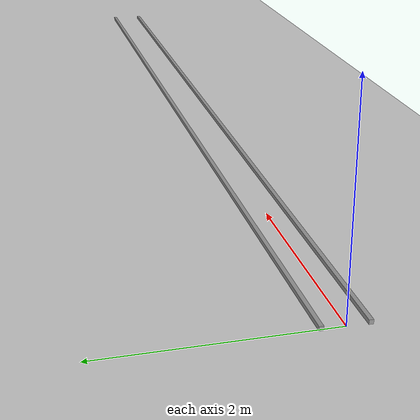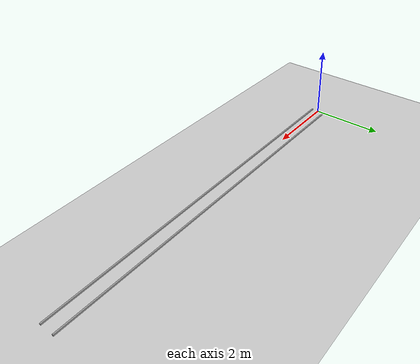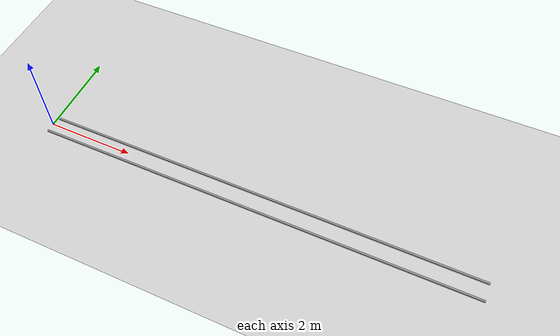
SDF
<sdf version="1.7">
 <world name="default">
  <light name="sun" type="directional">
   <pose>0 0 10 0 -0 0</pose>
   <diffuse>0.8 0.8 0.8 1</diffuse>
   <specular>0.2 0.2 0.2 1</specular>
   <attenuation>
    <range>1000</range>
    <constant>0.9</constant>
    <linear>0.01</linear>
    <quadratic>0.001</quadratic>
   </attenuation>
   <direction>-0.5 0.1 -0.9</direction>
   <spot><inner_angle>0</inner_angle><outer_angle>0</outer_angle><falloff>0</falloff></spot>
  </light>
  <model name="ground_plane">
   <static>1</static>
   <link name="link">
    <collision name="collision">
     <geometry><plane><normal>0 0 1</normal><size>100 100</size></plane></geometry>
     <surface>
      <contact><collide_bitmask>65535</collide_bitmask></contact>
      <friction><ode><mu>100</mu><mu2>50</mu2></ode></friction>
     </surface>
    </collision>
    <visual name="visual">
     <cast_shadows>0</cast_shadows>
     <geometry><plane><normal>0 0 1</normal><size>100 100</size></plane></geometry>
     <material>
      <script><uri>file://media/materials/scripts/gazebo.material</uri><name>Gazebo/Grey</name></script>
     </material>
    </visual>
   </link>
  </model>
  <gravity>0 0 -9.8</gravity>
  <magnetic_field>6e-06 2.3e-05 -4.2e-05</magnetic_field>
  <atmosphere type="adiabatic"/>
  <physics type="ode">
   <max_step_size>0.001</max_step_size>
   <real_time_factor>1</real_time_factor>
   <real_time_update_rate>1000</real_time_update_rate>
  </physics>
  <scene><ambient>0.4 0.4 0.4 1</ambient><background>0.7 0.7 0.7 1</background><shadows>1</shadows></scene>
  <spherical_coordinates>
   <surface_model>EARTH_WGS84</surface_model>
   <latitude_deg>0</latitude_deg>
   <longitude_deg>0</longitude_deg>
   <elevation>0</elevation>
   <heading_deg>0</heading_deg>
  </spherical_coordinates>
  <model name="Track1">
   <link name="link_0_clone">
    <inertial>
     <mass>0</mass>
     <inertia>
      <ixx>0.166667</ixx>
      <ixy>0</ixy>
      <ixz>0</ixz>
      <iyy>0.166667</iyy>
      <iyz>0</iyz>
      <izz>0.166667</izz>
     </inertia>
     <pose>0 0.1 0 0 -0 0</pose>
    </inertial>
    <visual name="visual">
     <pose>4.5 1.05 -0.49 0 -0 0</pose>
     <geometry><box><size>10 0.04 0.04</size></box></geometry>
     <material>
      <lighting>1</lighting>
      <script><uri>file://media/materials/scripts/gazebo.material</uri><name>Gazebo/Grey</name></script>
      <shader type="pixel"><normal_map>__default__</normal_map></shader>
      <ambient>0 0 0 1</ambient>
      <diffuse>0.008 0.008 0.008 1</diffuse>
      <specular>0 0 0 1</specular>
      <emissive>0 0 0 1</emissive>
     </material>
    </visual>
   </link>
   <link name="link_0_clone_clone">
    <inertial>
     <mass>0</mass>
     <inertia>
      <ixx>0.166667</ixx>
      <ixy>0</ixy>
      <ixz>0</ixz>
      <iyy>0.166667</iyy>
      <iyz>0</iyz>
      <izz>0.166667</izz>
     </inertia>
     <pose>0 0.1 0 0 -0 0</pose>
    </inertial>
    <pose>-0.001564 -0.4 0 0 -0 0</pose>
    <visual name="visual">
     <pose>4.5 1.05 -0.49 0 -0 0</pose>
     <geometry><box><size>10 0.04 0.04</size></box></geometry>
     <material>
      <lighting>1</lighting>
      <script><uri>file://media/materials/scripts/gazebo.material</uri><name>Gazebo/Grey</name></script>
      <shader type="pixel"><normal_map>__default__</normal_map></shader>
      <ambient>0 0 0 1</ambient>
      <diffuse>0.008 0.008 0.008 1</diffuse>
      <specular>0 0 0 1</specular>
      <emissive>0 0 0 1</emissive>
     </material>
    </visual>
   </link>
   <static>1</static>
   <pose>0.5 -0.85 0.5 0 -0 0</pose>
  </model>
 </world>
</sdf>
